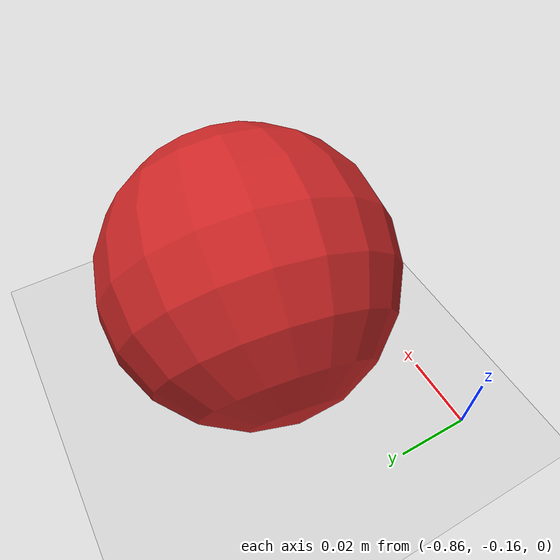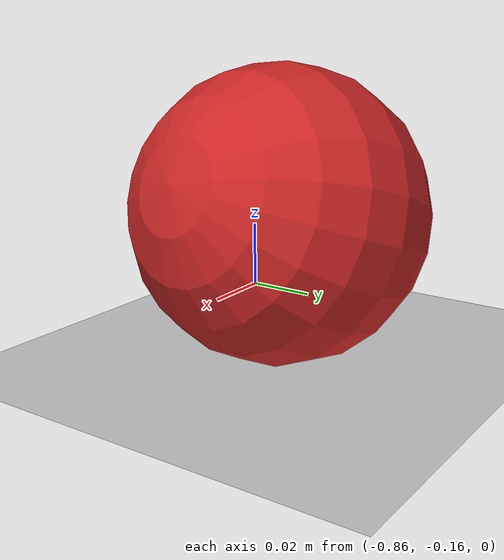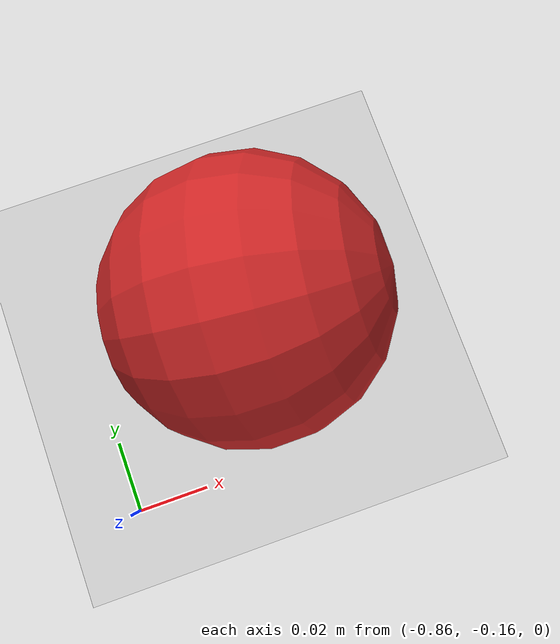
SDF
<sdf version="1.6">
 <world name="default">
  <light name="sun" type="directional">
   <pose>0 0 10 0 -0 0</pose>
   <diffuse>0.8 0.8 0.8 1</diffuse>
   <specular>0.1 0.1 0.1 1</specular>
   <attenuation>
    <range>1000</range>
    <constant>0.9</constant>
    <linear>0.01</linear>
    <quadratic>0.001</quadratic>
   </attenuation>
   <direction>-0.5 0.5 -1</direction>
  </light>
  <model name="ground_plane">
   <static>1</static>
   <link name="link">
    <collision name="collision">
     <geometry><plane><normal>0 0 1</normal><size>100 100</size></plane></geometry>
     <surface><friction><ode><mu>100</mu><mu2>50</mu2></ode></friction></surface>
    </collision>
    <visual name="visual">
     <cast_shadows>0</cast_shadows>
     <geometry><plane><normal>0 0 1</normal><size>100 100</size></plane></geometry>
     <material>
      <script><uri>file://media/materials/scripts/gazebo.material</uri><name>Gazebo/Grey</name></script>
     </material>
    </visual>
   </link>
  </model>
  <physics name="default_physics" default="0" type="ode">
   <max_step_size>0.01</max_step_size>
   <real_time_factor>1</real_time_factor>
   <real_time_update_rate>100</real_time_update_rate>
  </physics>
  <gravity>0 0 -9.8</gravity>
  <magnetic_field>6e-06 2.3e-05 -4.2e-05</magnetic_field>
  <atmosphere type="adiabatic"/>
  <scene><ambient>0.4 0.4 0.4 1</ambient><background>0.7 0.7 0.7 1</background><shadows>1</shadows></scene>
  <spherical_coordinates>
   <surface_model>EARTH_WGS84</surface_model>
   <latitude_deg>0</latitude_deg>
   <longitude_deg>0</longitude_deg>
   <elevation>0</elevation>
   <heading_deg>0</heading_deg>
  </spherical_coordinates>
  <model name="cricket_ball">
   <link name="link">
    <pose>0 0 0.0375 0 -0 0</pose>
    <inertial>
     <mass>0.1467</mass>
     <inertia>
      <ixx>8.25187e-05</ixx>
      <ixy>0</ixy>
      <ixz>0</ixz>
      <iyy>8.25187e-05</iyy>
      <iyz>0</iyz>
      <izz>8.25187e-05</izz>
     </inertia>
    </inertial>
    <collision name="collision"><geometry><sphere><radius>0.0375</radius></sphere></geometry></collision>
    <visual name="visual">
     <geometry><sphere><radius>0.0375</radius></sphere></geometry>
     <material>
      <script><uri>file://media/materials/scripts/gazebo.material</uri><name>Gazebo/Red</name></script>
     </material>
    </visual>
    <velocity_decay><linear>0</linear><angular>0.005</angular></velocity_decay>
   </link>
   <pose>-0.848496 -0.11335 0.025447 1.22117 0.35312 1.28604</pose>
  </model>
 </world>
</sdf>
